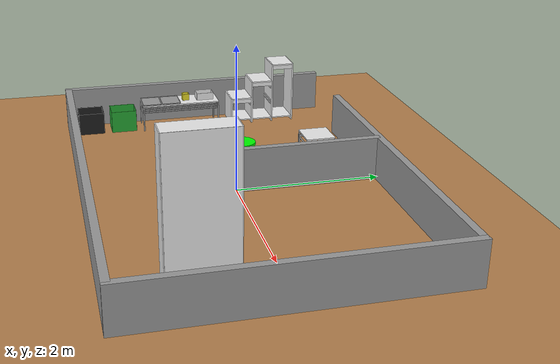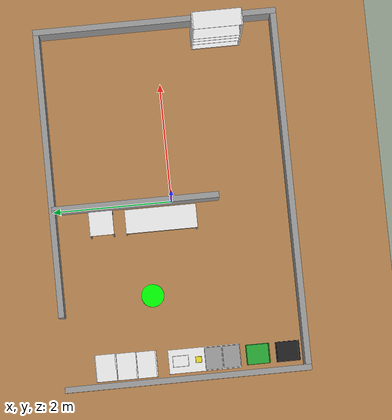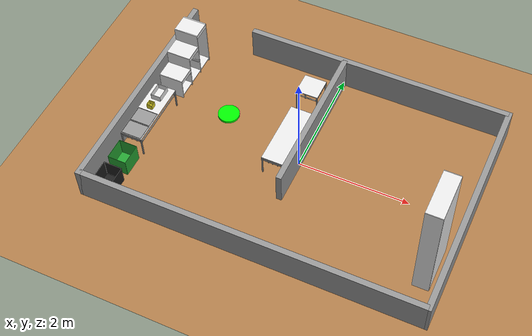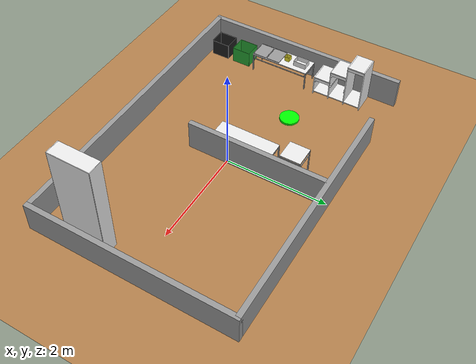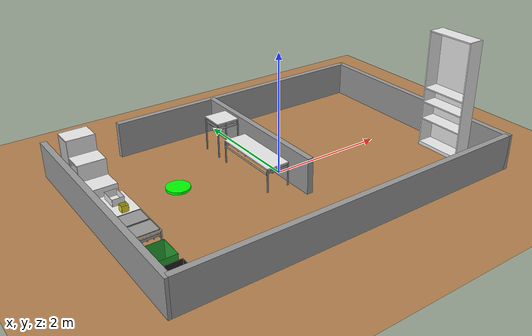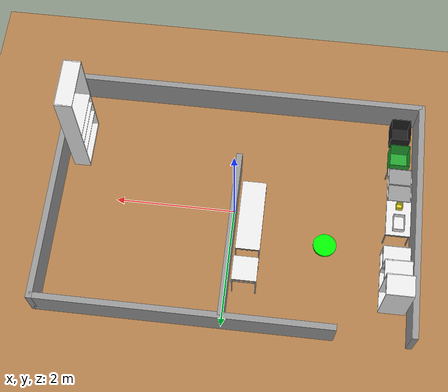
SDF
<sdf version="1.6">
 <world name="default">
  <light name="sun" type="directional">
   <pose>0 0 10 0 -0 0</pose>
   <diffuse>0.8 0.8 0.8 1</diffuse>
   <specular>0.2 0.2 0.2 1</specular>
   <attenuation>
    <range>1000</range>
    <constant>0.9</constant>
    <linear>0.01</linear>
    <quadratic>0.001</quadratic>
   </attenuation>
   <direction>-0.5 0.1 -0.9</direction>
  </light>
  <gravity>0 0 0</gravity>
  <physics name="default_physics" default="0" type="ode">
   <max_step_size>0.001</max_step_size>
   <real_time_factor>1</real_time_factor>
   <real_time_update_rate>1000</real_time_update_rate>
  </physics>
  <scene><ambient>0.4 0.4 0.4 1</ambient><background>0.7 0.7 0.7 1</background><shadows>1</shadows></scene>
  <model name="wrc_ground_plane">
   <static>1</static>
   <link name="link">
    <collision name="collision">
     <geometry><plane><normal>0 0 1</normal><size>10 10</size></plane></geometry>
     <surface>
      <contact><collide_bitmask>65535</collide_bitmask></contact>
      <friction><ode><mu>100</mu><mu2>50</mu2></ode></friction>
     </surface>
    </collision>
    <visual name="visual">
     <cast_shadows>0</cast_shadows>
     <geometry><plane><normal>0 0 1</normal><size>10 10</size></plane></geometry>
     <material>
      <script><uri>model://wrc_ground_plane/materials/wood.material</uri><name>WRS/WoodFloor</name></script>
     </material>
    </visual>
   </link>
  </model>
  <model name="wrc_frame">
   <static>1</static>
   <link name="link">
    <inertial><mass>1</mass></inertial>
    <collision name="wall_back">
     <pose>0.6 2 0.3 0 -0 0</pose>
     <geometry><box><size>4.8 0.1 0.6</size></box></geometry>
    </collision>
    <visual name="wall_back_v">
     <pose>0.6 2 0.3 0 -0 0</pose>
     <geometry><box><size>4.8 0.1 0.6</size></box></geometry>
     <material>
      <script><uri>file://media/materials/scripts/gazebo.material</uri><name>Gazebo/Gray</name></script>
     </material>
    </visual>
    <collision name="wall_front">
     <pose>0 -2 0.3 0 -0 0</pose>
     <geometry><box><size>6 0.1 0.6</size></box></geometry>
    </collision>
    <visual name="wall_front_v">
     <pose>0 -2 0.3 0 -0 0</pose>
     <geometry><box><size>6 0.1 0.6</size></box></geometry>
     <material>
      <script><uri>file://media/materials/scripts/gazebo.material</uri><name>Gazebo/Gray</name></script>
     </material>
    </visual>
    <collision name="wall_left">
     <pose>-3 0 0.3 0 -0 0</pose>
     <geometry><box><size>0.1 4.1 0.6</size></box></geometry>
    </collision>
    <visual name="wall_left_v">
     <pose>-3 0 0.3 0 -0 0</pose>
     <geometry><box><size>0.1 4.1 0.6</size></box></geometry>
     <material>
      <script><uri>file://media/materials/scripts/gazebo.material</uri><name>Gazebo/Gray</name></script>
     </material>
    </visual>
    <collision name="wall_right">
     <pose>3 0 0.3 0 -0 0</pose>
     <geometry><box><size>0.1 4.1 0.6</size></box></geometry>
    </collision>
    <visual name="wall_right_v">
     <pose>3 0 0.3 0 -0 0</pose>
     <geometry><box><size>0.1 4.1 0.6</size></box></geometry>
     <material>
      <script><uri>file://media/materials/scripts/gazebo.material</uri><name>Gazebo/Gray</name></script>
     </material>
    </visual>
    <collision name="wall_center">
     <pose>0 0.6 0.3 0 -0 0</pose>
     <geometry><box><size>0.1 2.8 0.6</size></box></geometry>
    </collision>
    <visual name="wall_center_v">
     <pose>0 0.6 0.3 0 -0 0</pose>
     <geometry><box><size>0.1 2.8 0.6</size></box></geometry>
     <material>
      <script><uri>file://media/materials/scripts/gazebo.material</uri><name>Gazebo/Gray</name></script>
     </material>
    </visual>
   </link>
  </model>
  <model name="wrc_bookshelf">
   <static>1</static>
   <link name="link">
    <inertial><mass>1</mass></inertial>
    <collision name="back">
     <pose>0 0.005 1.01 0 -0 0</pose>
     <geometry><box><size>0.8 0.01 2.02</size></box></geometry>
    </collision>
    <visual name="back_v">
     <pose>0 0.14 1.01 0 -0 0</pose>
     <geometry><box><size>0.8 0.01 2.02</size></box></geometry>
     <material>
      <script><uri>file://media/materials/scripts/gazebo.material</uri><name>Gazebo/White</name></script>
     </material>
    </visual>
    <collision name="left_side">
     <pose>0.4 0 1.01 0 -0 0</pose>
     <geometry><box><size>0.02 0.28 2.02</size></box></geometry>
    </collision>
    <visual name="left_side_v">
     <pose>0.4 0 1.01 0 -0 0</pose>
     <geometry><box><size>0.02 0.28 2.02</size></box></geometry>
     <material>
      <script><uri>file://media/materials/scripts/gazebo.material</uri><name>Gazebo/White</name></script>
     </material>
    </visual>
    <collision name="right_side">
     <pose>-0.4 0 1.01 0 -0 0</pose>
     <geometry><box><size>0.02 0.28 2.02</size></box></geometry>
    </collision>
    <visual name="right_side_v">
     <pose>-0.4 0 1.01 0 -0 0</pose>
     <geometry><box><size>0.02 0.28 2.02</size></box></geometry>
     <material>
      <script><uri>file://media/materials/scripts/gazebo.material</uri><name>Gazebo/White</name></script>
     </material>
    </visual>
    <collision name="bottom">
     <pose>0 0 0.03 0 -0 0</pose>
     <geometry><box><size>0.8 0.28 0.06</size></box></geometry>
    </collision>
    <visual name="bottom_v">
     <pose>0 0 0.03 0 -0 0</pose>
     <geometry><box><size>0.8 0.28 0.06</size></box></geometry>
     <material>
      <script><uri>file://media/materials/scripts/gazebo.material</uri><name>Gazebo/White</name></script>
     </material>
    </visual>
    <collision name="top">
     <pose>0 0 2.01 0 -0 0</pose>
     <geometry><box><size>0.8 0.28 0.02</size></box></geometry>
    </collision>
    <visual name="top_v">
     <pose>0 0 2.01 0 -0 0</pose>
     <geometry><box><size>0.8 0.28 0.02</size></box></geometry>
     <material>
      <script><uri>file://media/materials/scripts/gazebo.material</uri><name>Gazebo/White</name></script>
     </material>
    </visual>
    <collision name="slit1">
     <pose>0 0 0.49 0 -0 0</pose>
     <geometry><box><size>0.8 0.28 0.02</size></box></geometry>
    </collision>
    <visual name="slit1_v">
     <pose>0 0 0.49 0 -0 0</pose>
     <geometry><box><size>0.8 0.28 0.02</size></box></geometry>
     <material>
      <script><uri>file://media/materials/scripts/gazebo.material</uri><name>Gazebo/White</name></script>
     </material>
    </visual>
    <collision name="slit2">
     <pose>0 0 0.79 0 -0 0</pose>
     <geometry><box><size>0.8 0.28 0.02</size></box></geometry>
    </collision>
    <visual name="slit2_v">
     <pose>0 0 0.79 0 -0 0</pose>
     <geometry><box><size>0.8 0.28 0.02</size></box></geometry>
     <material>
      <script><uri>file://media/materials/scripts/gazebo.material</uri><name>Gazebo/White</name></script>
     </material>
    </visual>
    <collision name="slit3">
     <pose>0 0 1.04 0 -0 0</pose>
     <geometry><box><size>0.8 0.28 0.02</size></box></geometry>
    </collision>
    <visual name="slit3_v">
     <pose>0 0 1.04 0 -0 0</pose>
     <geometry><box><size>0.8 0.28 0.02</size></box></geometry>
     <material>
      <script><uri>file://media/materials/scripts/gazebo.material</uri><name>Gazebo/White</name></script>
     </material>
    </visual>
   </link>
   <pose>2.7 -1 0 0 0 -1.57</pose>
  </model>
  <model name="wrc_bin_black">
   <static>1</static>
   <link name="link">
    <inertial><mass>1</mass></inertial>
    <collision name="bottom">
     <pose>0 0 0.002 0 -0 0</pose>
     <geometry><box><size>0.33 0.38 0.004</size></box></geometry>
    </collision>
    <visual name="bottom_v">
     <pose>0 0 0.002 0 -0 0</pose>
     <geometry><box><size>0.33 0.38 0.004</size></box></geometry>
     <material>
      <script><uri>file://media/materials/scripts/gazebo.material</uri><name>Gazebo/Black</name></script>
     </material>
    </visual>
    <collision name="front">
     <pose>0 0.19 0.165 0 -0 0</pose>
     <geometry><box><size>0.33 0.004 0.33</size></box></geometry>
    </collision>
    <visual name="front_v">
     <pose>0 0.19 0.165 0 -0 0</pose>
     <geometry><box><size>0.33 0.004 0.33</size></box></geometry>
     <material>
      <script><uri>file://media/materials/scripts/gazebo.material</uri><name>Gazebo/Black</name></script>
     </material>
    </visual>
    <collision name="back">
     <pose>0 -0.19 0.165 0 -0 0</pose>
     <geometry><box><size>0.33 0.004 0.33</size></box></geometry>
    </collision>
    <visual name="back_v">
     <pose>0 -0.19 0.165 0 -0 0</pose>
     <geometry><box><size>0.33 0.004 0.33</size></box></geometry>
     <material>
      <script><uri>file://media/materials/scripts/gazebo.material</uri><name>Gazebo/Black</name></script>
     </material>
    </visual>
    <collision name="left">
     <pose>0.165 0 0.165 0 -0 0</pose>
     <geometry><box><size>0.004 0.38 0.33</size></box></geometry>
    </collision>
    <visual name="left_v">
     <pose>0.165 0 0.165 0 -0 0</pose>
     <geometry><box><size>0.004 0.38 0.33</size></box></geometry>
     <material>
      <script><uri>file://media/materials/scripts/gazebo.material</uri><name>Gazebo/Black</name></script>
     </material>
    </visual>
    <collision name="right">
     <pose>-0.165 0 0.165 0 -0 0</pose>
     <geometry><box><size>0.004 0.38 0.33</size></box></geometry>
    </collision>
    <visual name="right_v">
     <pose>-0.165 0 0.165 0 -0 0</pose>
     <geometry><box><size>0.004 0.38 0.33</size></box></geometry>
     <material>
      <script><uri>file://media/materials/scripts/gazebo.material</uri><name>Gazebo/Black</name></script>
     </material>
    </visual>
   </link>
   <pose>-2.7 -1.7 0 0 -0 0</pose>
  </model>
  <model name="wrc_bin_green">
   <static>1</static>
   <link name="link">
    <inertial><mass>1</mass></inertial>
    <collision name="bottom">
     <pose>0 0 0.002 0 -0 0</pose>
     <geometry><box><size>0.33 0.38 0.004</size></box></geometry>
    </collision>
    <visual name="bottom_v">
     <pose>0 0 0.002 0 -0 0</pose>
     <geometry><box><size>0.33 0.38 0.004</size></box></geometry>
     <material>
      <script><uri>file://media/materials/scripts/gazebo.material</uri><name>Gazebo/Green</name></script>
     </material>
    </visual>
    <collision name="front">
     <pose>0 0.19 0.165 0 -0 0</pose>
     <geometry><box><size>0.33 0.004 0.33</size></box></geometry>
    </collision>
    <visual name="front_v">
     <pose>0 0.19 0.165 0 -0 0</pose>
     <geometry><box><size>0.33 0.004 0.33</size></box></geometry>
     <material>
      <script><uri>file://media/materials/scripts/gazebo.material</uri><name>Gazebo/Green</name></script>
     </material>
    </visual>
    <collision name="back">
     <pose>0 -0.19 0.165 0 -0 0</pose>
     <geometry><box><size>0.33 0.004 0.33</size></box></geometry>
    </collision>
    <visual name="back_v">
     <pose>0 -0.19 0.165 0 -0 0</pose>
     <geometry><box><size>0.33 0.004 0.33</size></box></geometry>
     <material>
      <script><uri>file://media/materials/scripts/gazebo.material</uri><name>Gazebo/Green</name></script>
     </material>
    </visual>
    <collision name="left">
     <pose>0.165 0 0.165 0 -0 0</pose>
     <geometry><box><size>0.004 0.38 0.33</size></box></geometry>
    </collision>
    <visual name="left_v">
     <pose>0.165 0 0.165 0 -0 0</pose>
     <geometry><box><size>0.004 0.38 0.33</size></box></geometry>
     <material>
      <script><uri>file://media/materials/scripts/gazebo.material</uri><name>Gazebo/Green</name></script>
     </material>
    </visual>
    <collision name="right">
     <pose>-0.165 0 0.165 0 -0 0</pose>
     <geometry><box><size>0.004 0.38 0.33</size></box></geometry>
    </collision>
    <visual name="right_v">
     <pose>-0.165 0 0.165 0 -0 0</pose>
     <geometry><box><size>0.004 0.38 0.33</size></box></geometry>
     <material>
      <script><uri>file://media/materials/scripts/gazebo.material</uri><name>Gazebo/Green</name></script>
     </material>
    </visual>
   </link>
   <pose>-2.7 -1.2 0 0 -0 0</pose>
  </model>
  <model name="wrc_stair_like_drawer">
   <static>1</static>
   <link name="link">
    <inertial><mass>1</mass></inertial>
    <collision name="slit1">
     <pose>0 -0.495 0.21 0 -0 0</pose>
     <geometry><box><size>0.44 0.02 0.42</size></box></geometry>
    </collision>
    <visual name="slit1_v">
     <pose>0 -0.495 0.21 0 -0 0</pose>
     <geometry><box><size>0.44 0.02 0.42</size></box></geometry>
     <material>
      <script><uri>file://media/materials/scripts/gazebo.material</uri><name>Gazebo/White</name></script>
     </material>
    </visual>
    <collision name="holder_slit1_1_left_low">
     <pose>0 -0.48 0.3 0 -0 0</pose>
     <geometry><box><size>0.42 0.02 0.02</size></box></geometry>
    </collision>
    <visual name="holder_slit1_1_left_low_v">
     <pose>0 -0.48 0.3 0 -0 0</pose>
     <geometry><box><size>0.42 0.02 0.02</size></box></geometry>
     <material>
      <script><uri>file://media/materials/scripts/gazebo.material</uri><name>Gazebo/White</name></script>
     </material>
    </visual>
    <collision name="holder_slit1_1_left_high">
     <pose>0 -0.48 0.34 0 -0 0</pose>
     <geometry><box><size>0.42 0.02 0.02</size></box></geometry>
    </collision>
    <visual name="holder_slit1_1_left_high_v">
     <pose>0 -0.48 0.34 0 -0 0</pose>
     <geometry><box><size>0.42 0.02 0.02</size></box></geometry>
     <material>
      <script><uri>file://media/materials/scripts/gazebo.material</uri><name>Gazebo/White</name></script>
     </material>
    </visual>
    <collision name="holder_slit1_1_right_low">
     <pose>0 -0.18 0.3 0 -0 0</pose>
     <geometry><box><size>0.42 0.02 0.02</size></box></geometry>
    </collision>
    <visual name="holder_slit1_1_right_low_v">
     <pose>0 -0.18 0.3 0 -0 0</pose>
     <geometry><box><size>0.42 0.02 0.02</size></box></geometry>
     <material>
      <script><uri>file://media/materials/scripts/gazebo.material</uri><name>Gazebo/White</name></script>
     </material>
    </visual>
    <collision name="holder_slit1_1_right_high">
     <pose>0 -0.18 0.34 0 -0 0</pose>
     <geometry><box><size>0.42 0.02 0.02</size></box></geometry>
    </collision>
    <visual name="holder_slit1_1_right_high_v">
     <pose>0 -0.18 0.34 0 -0 0</pose>
     <geometry><box><size>0.42 0.02 0.02</size></box></geometry>
     <material>
      <script><uri>file://media/materials/scripts/gazebo.material</uri><name>Gazebo/White</name></script>
     </material>
    </visual>
    <collision name="slit2">
     <pose>0 -0.165 0.34 0 -0 0</pose>
     <geometry><box><size>0.44 0.02 0.68</size></box></geometry>
    </collision>
    <visual name="slit2_v">
     <pose>0 -0.165 0.34 0 -0 0</pose>
     <geometry><box><size>0.44 0.02 0.68</size></box></geometry>
     <material>
      <script><uri>file://media/materials/scripts/gazebo.material</uri><name>Gazebo/White</name></script>
     </material>
    </visual>
    <collision name="holder_slit2_1_left_low">
     <pose>0 -0.15 0.3 0 -0 0</pose>
     <geometry><box><size>0.42 0.02 0.02</size></box></geometry>
    </collision>
    <visual name="holder_slit2_1_left_low_v">
     <pose>0 -0.15 0.3 0 -0 0</pose>
     <geometry><box><size>0.42 0.02 0.02</size></box></geometry>
     <material>
      <script><uri>file://media/materials/scripts/gazebo.material</uri><name>Gazebo/White</name></script>
     </material>
    </visual>
    <collision name="holder_slit2_1_left_high">
     <pose>0 -0.15 0.34 0 -0 0</pose>
     <geometry><box><size>0.42 0.02 0.02</size></box></geometry>
    </collision>
    <visual name="holder_slit2_1_left_high_v">
     <pose>0 -0.15 0.34 0 -0 0</pose>
     <geometry><box><size>0.42 0.02 0.02</size></box></geometry>
     <material>
      <script><uri>file://media/materials/scripts/gazebo.material</uri><name>Gazebo/White</name></script>
     </material>
    </visual>
    <collision name="holder_slit2_1_right_low">
     <pose>0 0.15 0.3 0 -0 0</pose>
     <geometry><box><size>0.42 0.02 0.02</size></box></geometry>
    </collision>
    <visual name="holder_slit2_1_right_low_v">
     <pose>0 0.15 0.3 0 -0 0</pose>
     <geometry><box><size>0.42 0.02 0.02</size></box></geometry>
     <material>
      <script><uri>file://media/materials/scripts/gazebo.material</uri><name>Gazebo/White</name></script>
     </material>
    </visual>
    <collision name="holder_slit2_1_right_high">
     <pose>0 0.15 0.34 0 -0 0</pose>
     <geometry><box><size>0.42 0.02 0.02</size></box></geometry>
    </collision>
    <visual name="holder_slit2_1_right_high_v">
     <pose>0 0.15 0.34 0 -0 0</pose>
     <geometry><box><size>0.42 0.02 0.02</size></box></geometry>
     <material>
      <script><uri>file://media/materials/scripts/gazebo.material</uri><name>Gazebo/White</name></script>
     </material>
    </visual>
    <collision name="holder_slit2_2_left_low">
     <pose>0 -0.15 0.56 0 -0 0</pose>
     <geometry><box><size>0.42 0.02 0.02</size></box></geometry>
    </collision>
    <visual name="holder_slit2_2_left_low_v">
     <pose>0 -0.15 0.56 0 -0 0</pose>
     <geometry><box><size>0.42 0.02 0.02</size></box></geometry>
     <material>
      <script><uri>file://media/materials/scripts/gazebo.material</uri><name>Gazebo/White</name></script>
     </material>
    </visual>
    <collision name="holder_slit2_2_left_high">
     <pose>0 -0.15 0.6 0 -0 0</pose>
     <geometry><box><size>0.42 0.02 0.02</size></box></geometry>
    </collision>
    <visual name="holder_slit2_2_left_high_v">
     <pose>0 -0.15 0.6 0 -0 0</pose>
     <geometry><box><size>0.42 0.02 0.02</size></box></geometry>
     <material>
      <script><uri>file://media/materials/scripts/gazebo.material</uri><name>Gazebo/White</name></script>
     </material>
    </visual>
    <collision name="holder_slit2_2_right_low">
     <pose>0 0.15 0.56 0 -0 0</pose>
     <geometry><box><size>0.42 0.02 0.02</size></box></geometry>
    </collision>
    <visual name="holder_slit2_2_right_low_v">
     <pose>0 0.15 0.56 0 -0 0</pose>
     <geometry><box><size>0.42 0.02 0.02</size></box></geometry>
     <material>
      <script><uri>file://media/materials/scripts/gazebo.material</uri><name>Gazebo/White</name></script>
     </material>
    </visual>
    <collision name="holder_slit2_2_right_high">
     <pose>0 0.15 0.6 0 -0 0</pose>
     <geometry><box><size>0.42 0.02 0.02</size></box></geometry>
    </collision>
    <visual name="holder_slit2_2_right_high_v">
     <pose>0 0.15 0.6 0 -0 0</pose>
     <geometry><box><size>0.42 0.02 0.02</size></box></geometry>
     <material>
      <script><uri>file://media/materials/scripts/gazebo.material</uri><name>Gazebo/White</name></script>
     </material>
    </visual>
    <collision name="slit3">
     <pose>0 0.165 0.47 0 -0 0</pose>
     <geometry><box><size>0.44 0.02 0.94</size></box></geometry>
    </collision>
    <visual name="slit3_v">
     <pose>0 0.165 0.47 0 -0 0</pose>
     <geometry><box><size>0.44 0.02 0.94</size></box></geometry>
     <material>
      <script><uri>file://media/materials/scripts/gazebo.material</uri><name>Gazebo/White</name></script>
     </material>
    </visual>
    <collision name="slit4">
     <pose>0 0.495 0.47 0 -0 0</pose>
     <geometry><box><size>0.44 0.02 0.94</size></box></geometry>
    </collision>
    <visual name="slit4_v">
     <pose>0 0.495 0.47 0 -0 0</pose>
     <geometry><box><size>0.44 0.02 0.94</size></box></geometry>
     <material>
      <script><uri>file://media/materials/scripts/gazebo.material</uri><name>Gazebo/White</name></script>
     </material>
    </visual>
    <collision name="top1">
     <pose>0 -0.33 0.41 0 -0 0</pose>
     <geometry><box><size>0.44 0.33 0.02</size></box></geometry>
    </collision>
    <visual name="top1_v">
     <pose>0 -0.33 0.41 0 -0 0</pose>
     <geometry><box><size>0.44 0.33 0.02</size></box></geometry>
     <material>
      <script><uri>file://media/materials/scripts/gazebo.material</uri><name>Gazebo/White</name></script>
     </material>
    </visual>
    <collision name="top1_front">
     <pose>0.21 -0.33 0.37 0 -0 0</pose>
     <geometry><box><size>0.02 0.33 0.06</size></box></geometry>
    </collision>
    <visual name="top1_front_v">
     <pose>0.21 -0.33 0.37 0 -0 0</pose>
     <geometry><box><size>0.02 0.33 0.06</size></box></geometry>
     <material>
      <script><uri>file://media/materials/scripts/gazebo.material</uri><name>Gazebo/White</name></script>
     </material>
    </visual>
    <collision name="top2">
     <pose>0 0 0.67 0 -0 0</pose>
     <geometry><box><size>0.44 0.33 0.02</size></box></geometry>
    </collision>
    <visual name="top2_v">
     <pose>0 0 0.67 0 -0 0</pose>
     <geometry><box><size>0.44 0.33 0.02</size></box></geometry>
     <material>
      <script><uri>file://media/materials/scripts/gazebo.material</uri><name>Gazebo/White</name></script>
     </material>
    </visual>
    <collision name="top2_front">
     <pose>0.21 0 0.63 0 -0 0</pose>
     <geometry><box><size>0.02 0.33 0.06</size></box></geometry>
    </collision>
    <visual name="top2_front_v">
     <pose>0.21 0 0.63 0 -0 0</pose>
     <geometry><box><size>0.02 0.33 0.06</size></box></geometry>
     <material>
      <script><uri>file://media/materials/scripts/gazebo.material</uri><name>Gazebo/White</name></script>
     </material>
    </visual>
    <collision name="top3">
     <pose>0 0.33 0.93 0 -0 0</pose>
     <geometry><box><size>0.44 0.33 0.02</size></box></geometry>
    </collision>
    <visual name="top3_v">
     <pose>0 0.33 0.93 0 -0 0</pose>
     <geometry><box><size>0.44 0.33 0.02</size></box></geometry>
     <material>
      <script><uri>file://media/materials/scripts/gazebo.material</uri><name>Gazebo/White</name></script>
     </material>
    </visual>
    <collision name="top3_front">
     <pose>0.21 0.33 0.89 0 -0 0</pose>
     <geometry><box><size>0.02 0.33 0.06</size></box></geometry>
    </collision>
    <visual name="top3_front_v">
     <pose>0.21 0.33 0.89 0 -0 0</pose>
     <geometry><box><size>0.02 0.33 0.06</size></box></geometry>
     <material>
      <script><uri>file://media/materials/scripts/gazebo.material</uri><name>Gazebo/White</name></script>
     </material>
    </visual>
    <collision name="bottom">
     <pose>0 0 0.06 0 -0 0</pose>
     <geometry><box><size>0.44 0.99 0.02</size></box></geometry>
    </collision>
    <visual name="bottom_v">
     <pose>0 0 0.06 0 -0 0</pose>
     <geometry><box><size>0.44 0.99 0.02</size></box></geometry>
     <material>
      <script><uri>file://media/materials/scripts/gazebo.material</uri><name>Gazebo/White</name></script>
     </material>
    </visual>
   </link>
   <pose>-2.7 1 0 0 -0 0</pose>
  </model>
  <model name="wrc_tall_table">
   <static>1</static>
   <link name="link">
    <inertial><mass>1</mass></inertial>
    <collision name="top">
     <pose>0 0 0.59 0 -0 0</pose>
     <geometry><box><size>0.4 0.4 0.02</size></box></geometry>
    </collision>
    <visual name="top_v">
     <pose>0 0 0.59 0 -0 0</pose>
     <geometry><box><size>0.4 0.4 0.02</size></box></geometry>
     <material>
      <script><uri>file://media/materials/scripts/gazebo.material</uri><name>Gazebo/White</name></script>
     </material>
    </visual>
    <collision name="leg1">
     <pose>0.19 0.19 0.285 0 -0 0</pose>
     <geometry><box><size>0.02 0.02 0.6</size></box></geometry>
    </collision>
    <visual name="leg1_v">
     <pose>0.19 0.19 0.285 0 -0 0</pose>
     <geometry><box><size>0.02 0.02 0.6</size></box></geometry>
     <material>
      <script><uri>file://media/materials/scripts/gazebo.material</uri><name>Gazebo/Gray</name></script>
     </material>
    </visual>
    <collision name="leg2">
     <pose>-0.19 0.19 0.285 0 -0 0</pose>
     <geometry><box><size>0.02 0.02 0.6</size></box></geometry>
    </collision>
    <visual name="leg2_v">
     <pose>-0.19 0.19 0.285 0 -0 0</pose>
     <geometry><box><size>0.02 0.02 0.6</size></box></geometry>
     <material>
      <script><uri>file://media/materials/scripts/gazebo.material</uri><name>Gazebo/Gray</name></script>
     </material>
    </visual>
    <collision name="leg3">
     <pose>0.19 -0.19 0.285 0 -0 0</pose>
     <geometry><box><size>0.02 0.02 0.6</size></box></geometry>
    </collision>
    <visual name="leg3_v">
     <pose>0.19 -0.19 0.285 0 -0 0</pose>
     <geometry><box><size>0.02 0.02 0.6</size></box></geometry>
     <material>
      <script><uri>file://media/materials/scripts/gazebo.material</uri><name>Gazebo/Gray</name></script>
     </material>
    </visual>
    <collision name="leg4">
     <pose>-0.19 -0.19 0.285 0 -0 0</pose>
     <geometry><box><size>0.02 0.02 0.6</size></box></geometry>
    </collision>
    <visual name="leg4_v">
     <pose>-0.19 -0.19 0.285 0 -0 0</pose>
     <geometry><box><size>0.02 0.02 0.6</size></box></geometry>
     <material>
      <script><uri>file://media/materials/scripts/gazebo.material</uri><name>Gazebo/Gray</name></script>
     </material>
    </visual>
    <collision name="side_panel1">
     <pose>0.175 0 0.52 0 -0 0</pose>
     <geometry><box><size>0.01 0.4 0.04</size></box></geometry>
    </collision>
    <visual name="side_panel1_v">
     <pose>0.175 0 0.52 0 -0 0</pose>
     <geometry><box><size>0.01 0.4 0.04</size></box></geometry>
     <material>
      <script><uri>file://media/materials/scripts/gazebo.material</uri><name>Gazebo/Gray</name></script>
     </material>
    </visual>
    <collision name="side_panel2">
     <pose>-0.175 0 0.52 0 -0 0</pose>
     <geometry><box><size>0.01 0.4 0.04</size></box></geometry>
    </collision>
    <visual name="side_panel2_v">
     <pose>-0.175 0 0.52 0 -0 0</pose>
     <geometry><box><size>0.01 0.4 0.04</size></box></geometry>
     <material>
      <script><uri>file://media/materials/scripts/gazebo.material</uri><name>Gazebo/Gray</name></script>
     </material>
    </visual>
    <collision name="bar1">
     <pose>0 0.2 0.49 0 1.57 0</pose>
     <geometry><cylinder><radius>0.01</radius><length>0.36</length></cylinder></geometry>
    </collision>
    <visual name="bar1_v">
     <pose>0 0.19 0.49 0 1.57 0</pose>
     <geometry><cylinder><radius>0.01</radius><length>0.36</length></cylinder></geometry>
     <material>
      <script><uri>file://media/materials/scripts/gazebo.material</uri><name>Gazebo/Gray</name></script>
     </material>
    </visual>
    <collision name="bar2">
     <pose>0 0.08 0.49 0 1.57 0</pose>
     <geometry><cylinder><radius>0.01</radius><length>0.36</length></cylinder></geometry>
    </collision>
    <visual name="bar2_v">
     <pose>0 0.08 0.49 0 1.57 0</pose>
     <geometry><cylinder><radius>0.01</radius><length>0.36</length></cylinder></geometry>
     <material>
      <script><uri>file://media/materials/scripts/gazebo.material</uri><name>Gazebo/Gray</name></script>
     </material>
    </visual>
    <collision name="bar3">
     <pose>0 0 0.49 0 1.57 0</pose>
     <geometry><cylinder><radius>0.01</radius><length>0.36</length></cylinder></geometry>
    </collision>
    <visual name="bar3_v">
     <pose>0 0 0.49 0 1.57 0</pose>
     <geometry><cylinder><radius>0.01</radius><length>0.36</length></cylinder></geometry>
     <material>
      <script><uri>file://media/materials/scripts/gazebo.material</uri><name>Gazebo/Gray</name></script>
     </material>
    </visual>
    <collision name="bar4">
     <pose>0 -0.08 0.49 0 1.57 0</pose>
     <geometry><cylinder><radius>0.01</radius><length>0.36</length></cylinder></geometry>
    </collision>
    <visual name="bar4_v">
     <pose>0 -0.09 0.49 0 1.57 0</pose>
     <geometry><cylinder><radius>0.01</radius><length>0.36</length></cylinder></geometry>
     <material>
      <script><uri>file://media/materials/scripts/gazebo.material</uri><name>Gazebo/Gray</name></script>
     </material>
    </visual>
    <collision name="bar5">
     <pose>0 -0.18 0.49 0 1.57 0</pose>
     <geometry><cylinder><radius>0.01</radius><length>0.36</length></cylinder></geometry>
    </collision>
    <visual name="bar5_v">
     <pose>0 -0.18 0.49 0 1.57 0</pose>
     <geometry><cylinder><radius>0.01</radius><length>0.36</length></cylinder></geometry>
     <material>
      <script><uri>file://media/materials/scripts/gazebo.material</uri><name>Gazebo/Gray</name></script>
     </material>
    </visual>
   </link>
   <pose>-0.3 1.2 0 0 -0 0</pose>
  </model>
  <model name="wrc_long_table">
   <static>1</static>
   <link name="link">
    <inertial><mass>1</mass></inertial>
    <collision name="top">
     <pose>0 0 0.39 0 -0 0</pose>
     <geometry><box><size>1.2 0.4 0.02</size></box></geometry>
    </collision>
    <visual name="top_v">
     <pose>0 0 0.39 0 -0 0</pose>
     <geometry><box><size>1.2 0.4 0.02</size></box></geometry>
     <material>
      <script><uri>file://media/materials/scripts/gazebo.material</uri><name>Gazebo/White</name></script>
     </material>
    </visual>
    <collision name="leg1">
     <pose>0.59 0.19 0.185 0 -0 0</pose>
     <geometry><box><size>0.02 0.02 0.4</size></box></geometry>
    </collision>
    <visual name="leg1_v">
     <pose>0.59 0.19 0.185 0 -0 0</pose>
     <geometry><box><size>0.02 0.02 0.4</size></box></geometry>
     <material>
      <script><uri>file://media/materials/scripts/gazebo.material</uri><name>Gazebo/Gray</name></script>
     </material>
    </visual>
    <collision name="leg2">
     <pose>-0.59 0.19 0.185 0 -0 0</pose>
     <geometry><box><size>0.02 0.02 0.4</size></box></geometry>
    </collision>
    <visual name="leg2_v">
     <pose>-0.59 0.19 0.185 0 -0 0</pose>
     <geometry><box><size>0.02 0.02 0.4</size></box></geometry>
     <material>
      <script><uri>file://media/materials/scripts/gazebo.material</uri><name>Gazebo/Gray</name></script>
     </material>
    </visual>
    <collision name="leg3">
     <pose>0.59 -0.19 0.185 0 -0 0</pose>
     <geometry><box><size>0.02 0.02 0.4</size></box></geometry>
    </collision>
    <visual name="leg3_v">
     <pose>0.59 -0.19 0.185 0 -0 0</pose>
     <geometry><box><size>0.02 0.02 0.4</size></box></geometry>
     <material>
      <script><uri>file://media/materials/scripts/gazebo.material</uri><name>Gazebo/Gray</name></script>
     </material>
    </visual>
    <collision name="leg4">
     <pose>-0.59 -0.19 0.185 0 -0 0</pose>
     <geometry><box><size>0.02 0.02 0.4</size></box></geometry>
    </collision>
    <visual name="leg4_v">
     <pose>-0.59 -0.19 0.185 0 -0 0</pose>
     <geometry><box><size>0.02 0.02 0.4</size></box></geometry>
     <material>
      <script><uri>file://media/materials/scripts/gazebo.material</uri><name>Gazebo/Gray</name></script>
     </material>
    </visual>
    <collision name="side_panel1">
     <pose>0.575 0 0.32 0 -0 0</pose>
     <geometry><box><size>0.01 0.4 0.04</size></box></geometry>
    </collision>
    <visual name="side_panel1_v">
     <pose>0.575 0 0.32 0 -0 0</pose>
     <geometry><box><size>0.01 0.4 0.04</size></box></geometry>
     <material>
      <script><uri>file://media/materials/scripts/gazebo.material</uri><name>Gazebo/Gray</name></script>
     </material>
    </visual>
    <collision name="side_panel2">
     <pose>-0.575 0 0.32 0 -0 0</pose>
     <geometry><box><size>0.01 0.4 0.04</size></box></geometry>
    </collision>
    <visual name="side_panel2_v">
     <pose>-0.575 0 0.32 0 -0 0</pose>
     <geometry><box><size>0.01 0.4 0.04</size></box></geometry>
     <material>
      <script><uri>file://media/materials/scripts/gazebo.material</uri><name>Gazebo/Gray</name></script>
     </material>
    </visual>
    <collision name="bar1">
     <pose>0 0.2 0.29 0 1.57 0</pose>
     <geometry><cylinder><radius>0.01</radius><length>1.16</length></cylinder></geometry>
    </collision>
    <visual name="bar1_v">
     <pose>0 0.19 0.29 0 1.57 0</pose>
     <geometry><cylinder><radius>0.01</radius><length>1.16</length></cylinder></geometry>
     <material>
      <script><uri>file://media/materials/scripts/gazebo.material</uri><name>Gazebo/Gray</name></script>
     </material>
    </visual>
    <collision name="bar2">
     <pose>0 0.08 0.29 0 1.57 0</pose>
     <geometry><cylinder><radius>0.01</radius><length>1.16</length></cylinder></geometry>
    </collision>
    <visual name="bar2_v">
     <pose>0 0.08 0.29 0 1.57 0</pose>
     <geometry><cylinder><radius>0.01</radius><length>1.16</length></cylinder></geometry>
     <material>
      <script><uri>file://media/materials/scripts/gazebo.material</uri><name>Gazebo/Gray</name></script>
     </material>
    </visual>
    <collision name="bar3">
     <pose>0 0 0.29 0 1.57 0</pose>
     <geometry><cylinder><radius>0.01</radius><length>1.16</length></cylinder></geometry>
    </collision>
    <visual name="bar3_v">
     <pose>0 0 0.29 0 1.57 0</pose>
     <geometry><cylinder><radius>0.01</radius><length>1.16</length></cylinder></geometry>
     <material>
      <script><uri>file://media/materials/scripts/gazebo.material</uri><name>Gazebo/Gray</name></script>
     </material>
    </visual>
    <collision name="bar4">
     <pose>0 -0.08 0.29 0 1.57 0</pose>
     <geometry><cylinder><radius>0.01</radius><length>1.16</length></cylinder></geometry>
    </collision>
    <visual name="bar4_v">
     <pose>0 -0.09 0.29 0 1.57 0</pose>
     <geometry><cylinder><radius>0.01</radius><length>1.16</length></cylinder></geometry>
     <material>
      <script><uri>file://media/materials/scripts/gazebo.material</uri><name>Gazebo/Gray</name></script>
     </material>
    </visual>
    <collision name="bar5">
     <pose>0 -0.18 0.29 0 1.57 0</pose>
     <geometry><cylinder><radius>0.01</radius><length>1.16</length></cylinder></geometry>
    </collision>
    <visual name="bar5_v">
     <pose>0 -0.18 0.29 0 1.57 0</pose>
     <geometry><cylinder><radius>0.01</radius><length>1.16</length></cylinder></geometry>
     <material>
      <script><uri>file://media/materials/scripts/gazebo.material</uri><name>Gazebo/Gray</name></script>
     </material>
    </visual>
   </link>
   <pose>-0.3 0.2 0 0 -0 1.57</pose>
  </model>
  <model name="wrc_long_table_0">
   <static>1</static>
   <link name="link">
    <inertial><mass>1</mass></inertial>
    <collision name="top">
     <pose>0 0 0.39 0 -0 0</pose>
     <geometry><box><size>1.2 0.4 0.02</size></box></geometry>
    </collision>
    <visual name="top_v">
     <pose>0 0 0.39 0 -0 0</pose>
     <geometry><box><size>1.2 0.4 0.02</size></box></geometry>
     <material>
      <script><uri>file://media/materials/scripts/gazebo.material</uri><name>Gazebo/White</name></script>
     </material>
    </visual>
    <collision name="leg1">
     <pose>0.59 0.19 0.185 0 -0 0</pose>
     <geometry><box><size>0.02 0.02 0.4</size></box></geometry>
    </collision>
    <visual name="leg1_v">
     <pose>0.59 0.19 0.185 0 -0 0</pose>
     <geometry><box><size>0.02 0.02 0.4</size></box></geometry>
     <material>
      <script><uri>file://media/materials/scripts/gazebo.material</uri><name>Gazebo/Gray</name></script>
     </material>
    </visual>
    <collision name="leg2">
     <pose>-0.59 0.19 0.185 0 -0 0</pose>
     <geometry><box><size>0.02 0.02 0.4</size></box></geometry>
    </collision>
    <visual name="leg2_v">
     <pose>-0.59 0.19 0.185 0 -0 0</pose>
     <geometry><box><size>0.02 0.02 0.4</size></box></geometry>
     <material>
      <script><uri>file://media/materials/scripts/gazebo.material</uri><name>Gazebo/Gray</name></script>
     </material>
    </visual>
    <collision name="leg3">
     <pose>0.59 -0.19 0.185 0 -0 0</pose>
     <geometry><box><size>0.02 0.02 0.4</size></box></geometry>
    </collision>
    <visual name="leg3_v">
     <pose>0.59 -0.19 0.185 0 -0 0</pose>
     <geometry><box><size>0.02 0.02 0.4</size></box></geometry>
     <material>
      <script><uri>file://media/materials/scripts/gazebo.material</uri><name>Gazebo/Gray</name></script>
     </material>
    </visual>
    <collision name="leg4">
     <pose>-0.59 -0.19 0.185 0 -0 0</pose>
     <geometry><box><size>0.02 0.02 0.4</size></box></geometry>
    </collision>
    <visual name="leg4_v">
     <pose>-0.59 -0.19 0.185 0 -0 0</pose>
     <geometry><box><size>0.02 0.02 0.4</size></box></geometry>
     <material>
      <script><uri>file://media/materials/scripts/gazebo.material</uri><name>Gazebo/Gray</name></script>
     </material>
    </visual>
    <collision name="side_panel1">
     <pose>0.575 0 0.32 0 -0 0</pose>
     <geometry><box><size>0.01 0.4 0.04</size></box></geometry>
    </collision>
    <visual name="side_panel1_v">
     <pose>0.575 0 0.32 0 -0 0</pose>
     <geometry><box><size>0.01 0.4 0.04</size></box></geometry>
     <material>
      <script><uri>file://media/materials/scripts/gazebo.material</uri><name>Gazebo/Gray</name></script>
     </material>
    </visual>
    <collision name="side_panel2">
     <pose>-0.575 0 0.32 0 -0 0</pose>
     <geometry><box><size>0.01 0.4 0.04</size></box></geometry>
    </collision>
    <visual name="side_panel2_v">
     <pose>-0.575 0 0.32 0 -0 0</pose>
     <geometry><box><size>0.01 0.4 0.04</size></box></geometry>
     <material>
      <script><uri>file://media/materials/scripts/gazebo.material</uri><name>Gazebo/Gray</name></script>
     </material>
    </visual>
    <collision name="bar1">
     <pose>0 0.2 0.29 0 1.57 0</pose>
     <geometry><cylinder><radius>0.01</radius><length>1.16</length></cylinder></geometry>
    </collision>
    <visual name="bar1_v">
     <pose>0 0.19 0.29 0 1.57 0</pose>
     <geometry><cylinder><radius>0.01</radius><length>1.16</length></cylinder></geometry>
     <material>
      <script><uri>file://media/materials/scripts/gazebo.material</uri><name>Gazebo/Gray</name></script>
     </material>
    </visual>
    <collision name="bar2">
     <pose>0 0.08 0.29 0 1.57 0</pose>
     <geometry><cylinder><radius>0.01</radius><length>1.16</length></cylinder></geometry>
    </collision>
    <visual name="bar2_v">
     <pose>0 0.08 0.29 0 1.57 0</pose>
     <geometry><cylinder><radius>0.01</radius><length>1.16</length></cylinder></geometry>
     <material>
      <script><uri>file://media/materials/scripts/gazebo.material</uri><name>Gazebo/Gray</name></script>
     </material>
    </visual>
    <collision name="bar3">
     <pose>0 0 0.29 0 1.57 0</pose>
     <geometry><cylinder><radius>0.01</radius><length>1.16</length></cylinder></geometry>
    </collision>
    <visual name="bar3_v">
     <pose>0 0 0.29 0 1.57 0</pose>
     <geometry><cylinder><radius>0.01</radius><length>1.16</length></cylinder></geometry>
     <material>
      <script><uri>file://media/materials/scripts/gazebo.material</uri><name>Gazebo/Gray</name></script>
     </material>
    </visual>
    <collision name="bar4">
     <pose>0 -0.08 0.29 0 1.57 0</pose>
     <geometry><cylinder><radius>0.01</radius><length>1.16</length></cylinder></geometry>
    </collision>
    <visual name="bar4_v">
     <pose>0 -0.09 0.29 0 1.57 0</pose>
     <geometry><cylinder><radius>0.01</radius><length>1.16</length></cylinder></geometry>
     <material>
      <script><uri>file://media/materials/scripts/gazebo.material</uri><name>Gazebo/Gray</name></script>
     </material>
    </visual>
    <collision name="bar5">
     <pose>0 -0.18 0.29 0 1.57 0</pose>
     <geometry><cylinder><radius>0.01</radius><length>1.16</length></cylinder></geometry>
    </collision>
    <visual name="bar5_v">
     <pose>0 -0.18 0.29 0 1.57 0</pose>
     <geometry><cylinder><radius>0.01</radius><length>1.16</length></cylinder></geometry>
     <material>
      <script><uri>file://media/materials/scripts/gazebo.material</uri><name>Gazebo/Gray</name></script>
     </material>
    </visual>
   </link>
   <pose>-2.7 -0.3 0 0 -0 1.57</pose>
  </model>
  <model name="wrc_tray_1">
   <static>1</static>
   <link name="link">
    <inertial><mass>1</mass></inertial>
    <collision name="bottom">
     <pose>0 0 0.002 0 -0 0</pose>
     <geometry><box><size>0.36 0.38 0.004</size></box></geometry>
    </collision>
    <visual name="bottom_v">
     <pose>0 0 0.002 0 -0 0</pose>
     <geometry><box><size>0.285 0.37 0.004</size></box></geometry>
     <material>
      <script><uri>file://media/materials/scripts/gazebo.material</uri><name>Gazebo/Gray</name></script>
     </material>
    </visual>
    <collision name="front">
     <pose>0 0.185 0.01 0 -0 0</pose>
     <geometry><box><size>0.285 0.004 0.01</size></box></geometry>
    </collision>
    <visual name="front_v">
     <pose>0 0.185 0.01 0 -0 0</pose>
     <geometry><box><size>0.285 0.004 0.01</size></box></geometry>
     <material>
      <script><uri>file://media/materials/scripts/gazebo.material</uri><name>Gazebo/Gray</name></script>
     </material>
    </visual>
    <collision name="back">
     <pose>0 -0.185 0.01 0 -0 0</pose>
     <geometry><box><size>0.285 0.004 0.01</size></box></geometry>
    </collision>
    <visual name="back_v">
     <pose>0 -0.185 0.01 0 -0 0</pose>
     <geometry><box><size>0.285 0.004 0.01</size></box></geometry>
     <material>
      <script><uri>file://media/materials/scripts/gazebo.material</uri><name>Gazebo/Gray</name></script>
     </material>
    </visual>
    <collision name="left">
     <pose>0.1425 0 0.01 0 -0 0</pose>
     <geometry><box><size>0.004 0.37 0.01</size></box></geometry>
    </collision>
    <visual name="left_v">
     <pose>0.1425 0 0.01 0 -0 0</pose>
     <geometry><box><size>0.004 0.37 0.01</size></box></geometry>
     <material>
      <script><uri>file://media/materials/scripts/gazebo.material</uri><name>Gazebo/Gray</name></script>
     </material>
    </visual>
    <collision name="right">
     <pose>-0.1425 0 0.01 0 -0 0</pose>
     <geometry><box><size>0.004 0.37 0.01</size></box></geometry>
    </collision>
    <visual name="right_v">
     <pose>-0.1425 0 0.01 0 -0 0</pose>
     <geometry><box><size>0.004 0.37 0.01</size></box></geometry>
     <material>
      <script><uri>file://media/materials/scripts/gazebo.material</uri><name>Gazebo/Gray</name></script>
     </material>
    </visual>
   </link>
   <pose>-2.7 -0.75 0.4 0 -0 1.57</pose>
  </model>
  <model name="wrc_tray_2">
   <static>1</static>
   <link name="link">
    <inertial><mass>1</mass></inertial>
    <collision name="bottom">
     <pose>0 0 0.002 0 -0 0</pose>
     <geometry><box><size>0.36 0.38 0.004</size></box></geometry>
    </collision>
    <visual name="bottom_v">
     <pose>0 0 0.002 0 -0 0</pose>
     <geometry><box><size>0.285 0.37 0.004</size></box></geometry>
     <material>
      <script><uri>file://media/materials/scripts/gazebo.material</uri><name>Gazebo/Gray</name></script>
     </material>
    </visual>
    <collision name="front">
     <pose>0 0.185 0.01 0 -0 0</pose>
     <geometry><box><size>0.285 0.004 0.01</size></box></geometry>
    </collision>
    <visual name="front_v">
     <pose>0 0.185 0.01 0 -0 0</pose>
     <geometry><box><size>0.285 0.004 0.01</size></box></geometry>
     <material>
      <script><uri>file://media/materials/scripts/gazebo.material</uri><name>Gazebo/Gray</name></script>
     </material>
    </visual>
    <collision name="back">
     <pose>0 -0.185 0.01 0 -0 0</pose>
     <geometry><box><size>0.285 0.004 0.01</size></box></geometry>
    </collision>
    <visual name="back_v">
     <pose>0 -0.185 0.01 0 -0 0</pose>
     <geometry><box><size>0.285 0.004 0.01</size></box></geometry>
     <material>
      <script><uri>file://media/materials/scripts/gazebo.material</uri><name>Gazebo/Gray</name></script>
     </material>
    </visual>
    <collision name="left">
     <pose>0.1425 0 0.01 0 -0 0</pose>
     <geometry><box><size>0.004 0.37 0.01</size></box></geometry>
    </collision>
    <visual name="left_v">
     <pose>0.1425 0 0.01 0 -0 0</pose>
     <geometry><box><size>0.004 0.37 0.01</size></box></geometry>
     <material>
      <script><uri>file://media/materials/scripts/gazebo.material</uri><name>Gazebo/Gray</name></script>
     </material>
    </visual>
    <collision name="right">
     <pose>-0.1425 0 0.01 0 -0 0</pose>
     <geometry><box><size>0.004 0.37 0.01</size></box></geometry>
    </collision>
    <visual name="right_v">
     <pose>-0.1425 0 0.01 0 -0 0</pose>
     <geometry><box><size>0.004 0.37 0.01</size></box></geometry>
     <material>
      <script><uri>file://media/materials/scripts/gazebo.material</uri><name>Gazebo/Gray</name></script>
     </material>
    </visual>
   </link>
   <pose>-2.7 -0.45 0.4 0 -0 1.57</pose>
  </model>
  <model name="wrc_container_a">
   <static>1</static>
   <link name="link">
    <inertial><mass>1</mass></inertial>
    <collision name="bottom">
     <pose>0 0 0.002 0 -0 0</pose>
     <geometry><box><size>0.1 0.1 0.004</size></box></geometry>
    </collision>
    <visual name="bottom_v">
     <pose>0 0 0.002 0 -0 0</pose>
     <geometry><box><size>0.1 0.1 0.004</size></box></geometry>
     <material>
      <script><uri>file://media/materials/scripts/gazebo.material</uri><name>Gazebo/Yellow</name></script>
     </material>
    </visual>
    <collision name="front">
     <pose>0 0.05 0.05 0 -0 0</pose>
     <geometry><box><size>0.1 0.004 0.1</size></box></geometry>
    </collision>
    <visual name="front_v">
     <pose>0 0.05 0.05 0 -0 0</pose>
     <geometry><box><size>0.1 0.004 0.1</size></box></geometry>
     <material>
      <script><uri>file://media/materials/scripts/gazebo.material</uri><name>Gazebo/Yellow</name></script>
     </material>
    </visual>
    <collision name="back">
     <pose>0 -0.05 0.05 0 -0 0</pose>
     <geometry><box><size>0.1 0.004 0.1</size></box></geometry>
    </collision>
    <visual name="back_v">
     <pose>0 -0.05 0.05 0 -0 0</pose>
     <geometry><box><size>0.1 0.004 0.1</size></box></geometry>
     <material>
      <script><uri>file://media/materials/scripts/gazebo.material</uri><name>Gazebo/Yellow</name></script>
     </material>
    </visual>
    <collision name="left">
     <pose>0.05 0 0.05 0 -0 0</pose>
     <geometry><box><size>0.004 0.1 0.1</size></box></geometry>
    </collision>
    <visual name="left_v">
     <pose>0.05 0 0.05 0 -0 0</pose>
     <geometry><box><size>0.004 0.1 0.1</size></box></geometry>
     <material>
      <script><uri>file://media/materials/scripts/gazebo.material</uri><name>Gazebo/Yellow</name></script>
     </material>
    </visual>
    <collision name="right">
     <pose>-0.05 0 0.05 0 -0 0</pose>
     <geometry><box><size>0.004 0.1 0.1</size></box></geometry>
    </collision>
    <visual name="right_v">
     <pose>-0.05 0 0.05 0 -0 0</pose>
     <geometry><box><size>0.004 0.1 0.1</size></box></geometry>
     <material>
      <script><uri>file://media/materials/scripts/gazebo.material</uri><name>Gazebo/Yellow</name></script>
     </material>
    </visual>
   </link>
   <pose>-2.7 -0.2 0.4 0 -0 0</pose>
  </model>
  <model name="wrc_container_b">
   <static>1</static>
   <link name="link">
    <inertial><mass>1</mass></inertial>
    <collision name="bottom">
     <pose>0 0 0.002 0 -0 0</pose>
     <geometry><box><size>0.18 0.26 0.004</size></box></geometry>
    </collision>
    <visual name="bottom_v">
     <pose>0 0 0.002 0 -0 0</pose>
     <geometry><box><size>0.18 0.26 0.004</size></box></geometry>
     <material>
      <script><uri>file://media/materials/scripts/gazebo.material</uri><name>Gazebo/White</name></script>
     </material>
    </visual>
    <collision name="front">
     <pose>0 0.13 0.055 0 -0 0</pose>
     <geometry><box><size>0.18 0.004 0.11</size></box></geometry>
    </collision>
    <visual name="front_v">
     <pose>0 0.13 0.055 0 -0 0</pose>
     <geometry><box><size>0.18 0.004 0.11</size></box></geometry>
     <material>
      <script><uri>file://media/materials/scripts/gazebo.material</uri><name>Gazebo/White</name></script>
     </material>
    </visual>
    <collision name="back">
     <pose>0 -0.13 0.055 0 -0 0</pose>
     <geometry><box><size>0.18 0.004 0.11</size></box></geometry>
    </collision>
    <visual name="back_v">
     <pose>0 -0.13 0.055 0 -0 0</pose>
     <geometry><box><size>0.18 0.004 0.11</size></box></geometry>
     <material>
      <script><uri>file://media/materials/scripts/gazebo.material</uri><name>Gazebo/White</name></script>
     </material>
    </visual>
    <collision name="left">
     <pose>0.09 0 0.055 0 -0 0</pose>
     <geometry><box><size>0.004 0.26 0.11</size></box></geometry>
    </collision>
    <visual name="left_v">
     <pose>0.09 0 0.055 0 -0 0</pose>
     <geometry><box><size>0.004 0.26 0.11</size></box></geometry>
     <material>
      <script><uri>file://media/materials/scripts/gazebo.material</uri><name>Gazebo/White</name></script>
     </material>
    </visual>
    <collision name="right">
     <pose>-0.09 0 0.055 0 -0 0</pose>
     <geometry><box><size>0.004 0.26 0.11</size></box></geometry>
    </collision>
    <visual name="right_v">
     <pose>-0.09 0 0.055 0 -0 0</pose>
     <geometry><box><size>0.004 0.26 0.11</size></box></geometry>
     <material>
      <script><uri>file://media/materials/scripts/gazebo.material</uri><name>Gazebo/White</name></script>
     </material>
    </visual>
   </link>
   <pose>-2.7 0.1 0.4 0 -0 0</pose>
  </model>
  <magnetic_field>6e-06 2.3e-05 -4.2e-05</magnetic_field>
  <atmosphere type="adiabatic"/>
  <spherical_coordinates>
   <surface_model>EARTH_WGS84</surface_model>
   <latitude_deg>0</latitude_deg>
   <longitude_deg>0</longitude_deg>
   <elevation>0</elevation>
   <heading_deg>0</heading_deg>
  </spherical_coordinates>
  <model name="RotatingTable">
   <link name="link_0">
    <inertial>
     <mass>94.5653</mass>
     <inertia>
      <ixx>0.0933732</ixx>
      <ixy>0</ixy>
      <ixz>0</ixz>
      <iyy>0.251341</iyy>
      <iyz>0</iyz>
      <izz>0.344057</izz>
     </inertia>
    </inertial>
    <pose>-0.000397 -0.013044 -0.078289 0 -0 0</pose>
    <visual name="visual">
     <geometry><box><size>0.178473 0.10866 0.00646</size></box></geometry>
     <material>
      <lighting>1</lighting>
      <script><uri>file://media/materials/scripts/gazebo.material</uri><name>Gazebo/Grey</name></script>
      <shader type="pixel"><normal_map>__default__</normal_map></shader>
      <emissive>0 0 0 1</emissive>
      <ambient>0.3 0.3 0.3 1</ambient>
      <diffuse>0.7 0.7 0.7 1</diffuse>
      <specular>0.01 0.01 0.01 1</specular>
     </material>
    </visual>
    <collision name="collision">
     <geometry><box><size>0.178473 0.10866 0.00646</size></box></geometry>
     <surface>
      <friction>
       <ode><mu>1</mu><mu2>1</mu2><fdir1>0 0 0</fdir1><slip1>0</slip1><slip2>0</slip2></ode>
       <torsional>
        <coefficient>1</coefficient>
        <patch_radius>0</patch_radius>
        <surface_radius>0</surface_radius>
        <use_patch_radius>1</use_patch_radius>
        <ode><slip>0</slip></ode>
       </torsional>
      </friction>
      <bounce><restitution_coefficient>0</restitution_coefficient><threshold>1e+06</threshold></bounce>
      <contact>
       <collide_without_contact>0</collide_without_contact>
       <collide_without_contact_bitmask>1</collide_without_contact_bitmask>
       <collide_bitmask>1</collide_bitmask>
       <ode>
        <soft_cfm>0</soft_cfm>
        <soft_erp>0.2</soft_erp>
        <kp>1e+13</kp>
        <kd>1</kd>
        <max_vel>0.01</max_vel>
        <min_depth>0</min_depth>
       </ode>
       <bullet>
        <split_impulse>1</split_impulse>
        <split_impulse_penetration_threshold>-0.01</split_impulse_penetration_threshold>
        <soft_cfm>0</soft_cfm>
        <soft_erp>0.2</soft_erp>
        <kp>1e+13</kp>
        <kd>1</kd>
       </bullet>
      </contact>
     </surface>
    </collision>
   </link>
   <link name="link_1">
    <inertial>
     <mass>5.85081</mass>
     <inertia>
      <ixx>0.0552513</ixx>
      <ixy>0</ixy>
      <ixz>0</ixz>
      <iyy>0.0552513</iyy>
      <iyz>0</iyz>
      <izz>0.108729</izz>
     </inertia>
    </inertial>
    <pose>-0.002732 -0.016648 -0.039749 0 -0 0</pose>
    <visual name="visual">
     <geometry><cylinder><radius>0.192788</radius><length>0.0426455</length></cylinder></geometry>
     <material>
      <lighting>1</lighting>
      <script><uri>file://media/materials/scripts/gazebo.material</uri><name>Gazebo/Grey</name></script>
      <shader type="pixel"><normal_map>__default__</normal_map></shader>
      <emissive>0 0 0 1</emissive>
      <ambient>0 1 0 1</ambient>
      <diffuse>0.7 0.7 0.7 1</diffuse>
      <specular>0.01 0.01 0.01 1</specular>
     </material>
    </visual>
    <collision name="collision">
     <geometry><cylinder><radius>0.192788</radius><length>0.042645</length></cylinder></geometry>
     <surface>
      <friction>
       <ode><mu>41</mu><mu2>41</mu2><fdir1>0 0 0</fdir1><slip1>0</slip1><slip2>0</slip2></ode>
       <torsional>
        <coefficient>1</coefficient>
        <patch_radius>0</patch_radius>
        <surface_radius>0</surface_radius>
        <use_patch_radius>1</use_patch_radius>
        <ode><slip>0</slip></ode>
       </torsional>
      </friction>
      <bounce><restitution_coefficient>0</restitution_coefficient><threshold>1e+06</threshold></bounce>
      <contact>
       <collide_without_contact>0</collide_without_contact>
       <collide_without_contact_bitmask>1</collide_without_contact_bitmask>
       <collide_bitmask>1</collide_bitmask>
       <ode>
        <soft_cfm>0</soft_cfm>
        <soft_erp>0.2</soft_erp>
        <kp>1e+13</kp>
        <kd>1</kd>
        <max_vel>0.01</max_vel>
        <min_depth>0</min_depth>
       </ode>
       <bullet>
        <split_impulse>1</split_impulse>
        <split_impulse_penetration_threshold>-0.01</split_impulse_penetration_threshold>
        <soft_cfm>0</soft_cfm>
        <soft_erp>0.2</soft_erp>
        <kp>1e+13</kp>
        <kd>1</kd>
       </bullet>
      </contact>
     </surface>
    </collision>
   </link>
   <joint name="link_1_JOINT_0" type="revolute">
    <parent>link_1</parent>
    <child>link_0</child>
    <axis>
     <xyz>0 0 1</xyz>
     <use_parent_model_frame>0</use_parent_model_frame>
     <limit>
      <lower>-1.79769e+308</lower>
      <upper>1.79769e+308</upper>
      <effort>-1</effort>
      <velocity>-1</velocity>
     </limit>
     <dynamics>
      <spring_reference>0</spring_reference>
      <spring_stiffness>0</spring_stiffness>
      <damping>0</damping>
      <friction>-0.13</friction>
     </dynamics>
    </axis>
    <physics>
     <ode><limit><cfm>0</cfm><erp>0</erp></limit><suspension><cfm>0</cfm><erp>0.2</erp></suspension></ode>
    </physics>
   </joint>
   <static>0</static>
   <pose>-1.55235 0.477299 0.081519 0 -0 0</pose>
  </model>
 </world>
</sdf>
